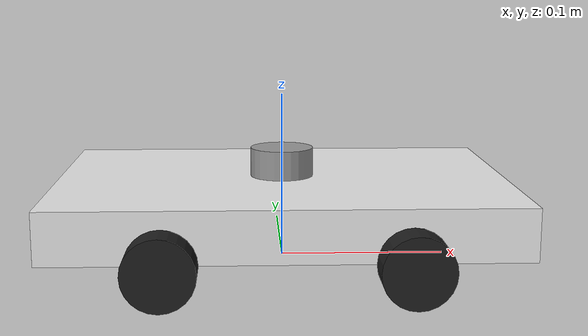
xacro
<?xml version="1.0"?>
<robot name="my_robot" xmlns:xacro="http://www.ros.org/wiki/xacro">

    <xacro:include filename="common_properties.xacro"/>
    <xacro:include filename="mobile_base.xacro"/>

</robot>

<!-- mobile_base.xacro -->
<robot xmlns:xacro="http://www.ros.org/wiki/xacro">

    <xacro:property name="base_length" value="0.27" />
    <xacro:property name="base_width" value="0.19" />
    <xacro:property name="base_height" value="0.03" />
    <xacro:property name="wheel_radius" value="0.02" />
    <xacro:property name="wheel_length" value="0.02" />

    <link name="base_footprint" />

    <link name="base_link">
        <visual>
            <geometry>
                <box size="${base_length} ${base_width} ${base_height}" />
            </geometry>
            <origin xyz="0 0 ${base_height / 2.0}" rpy="0 0 0" />
            <material name="white" />
        </visual>
        <collision>
            <geometry>
                <box size="${base_length} ${base_width} ${base_height}"/>
            </geometry>
            <origin xyz="0 0 ${base_height/2.0}" rpy="0 0 0"/>
        </collision>
        <xacro:box_inertia m="5.0" l="${2*base_length}" w="${2*base_width}" h="${2*base_height}"
                           xyz="0 0 ${base_height / 2.0}" rpy="0 0 0" />
    </link>

        <joint name="base_scan_joint" type="fixed">
        <parent link="base_link"/>
        <child link="base_scan"/>
        <origin xyz="0 0 ${base_height}" rpy="0 0 0"/>
    </joint>

    <link name="base_scan">
        <visual>
            <geometry>
                <cylinder radius="0.019" length="0.035"/>
            </geometry>
            <origin xyz="0 0 0" rpy="0 0 0" />
            <material name="grey" />
        </visual>
    </link>

    <xacro:macro name="wheel_link" params="prefix">
        <link name="${prefix}_wheel_link">
            <visual>
                <geometry>
                    <cylinder radius="${wheel_radius}" length="${wheel_length}" />
                </geometry>
                <origin xyz="0 0 0" rpy="${pi / 2.0} 0 0" />
                <material name="black" />
            </visual>
            <collision>
                <geometry>
                    <cylinder radius= "${wheel_radius}" length="${wheel_length}"/>
                 </geometry>
                <origin xyz="0.0 0.0 0.0" rpy="${pi/2.0} 0.0 0.0"/>
            </collision>
            <xacro:cylinder_inertia m="1.0" r="${2*wheel_radius}" h="${2*wheel_length}"
                                    xyz="0 0 0" rpy="${pi / 2.0} 0 0" />
        </link>
    </xacro:macro>

    <xacro:wheel_link prefix="right_aft" />
    <xacro:wheel_link prefix="left_aft" />
    <xacro:wheel_link prefix="left_forward" />
    <xacro:wheel_link prefix="right_forward" />

   <!-- Multiplied by 2 to increase inertia -->

    <joint name="base_joint" type="fixed">
        <parent link="base_footprint" />
        <child link="base_link" />
        <origin xyz="0 0 ${wheel_radius}" rpy="0 0 0"/>
    </joint>

    <joint name="base_right_aft_wheel_joint" type="continuous">
        <parent link="base_link" />
        <child link="right_aft_wheel_link" />
        <origin xyz="${-base_length / 4.0} ${-(base_width + wheel_length) / 2.0} 0" rpy="0 0 0" />
        <axis xyz="0 1 0" />
    </joint>
    <joint name="base_right_forward_wheel_joint" type="continuous">
        <parent link="base_link" />
        <child link="right_forward_wheel_link" />
        <origin xyz="${base_length / 4.0} ${-(base_width + wheel_length) / 2.0} 0" rpy="0 0 0" />
        <axis xyz="0 1 0" />
    </joint>

    <joint name="base_left_aft_wheel_joint" type="continuous">
        <parent link="base_link" />
        <child link="left_aft_wheel_link" />
        <origin xyz="${-base_length / 4.0} ${(base_width + wheel_length) / 2.0} 0" rpy="0 0 0" />
        <axis xyz="0 1 0" />
    </joint>

    <joint name="base_left_forward_wheel_joint" type="continuous">
        <parent link="base_link" />
        <child link="left_forward_wheel_link" />
        <origin xyz="${base_length / 4.0} ${(base_width + wheel_length) / 2.0} 0" rpy="0 0 0" />
        <axis xyz="0 1 0" />
    </joint>

</robot>
